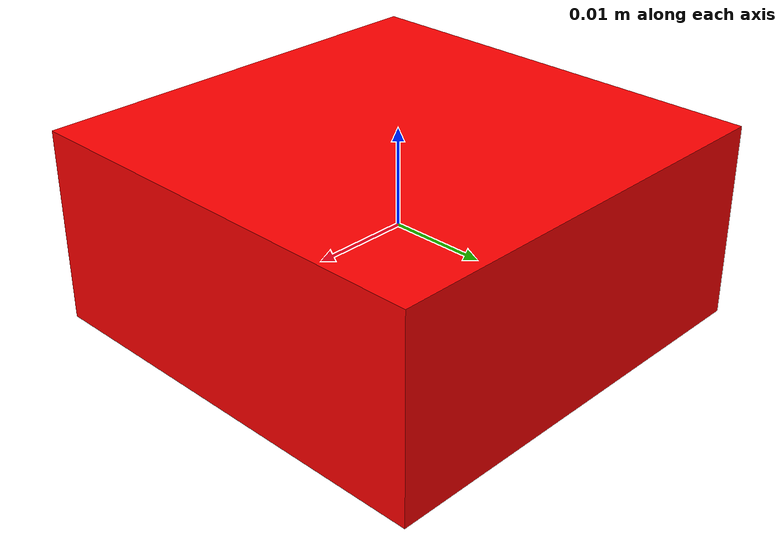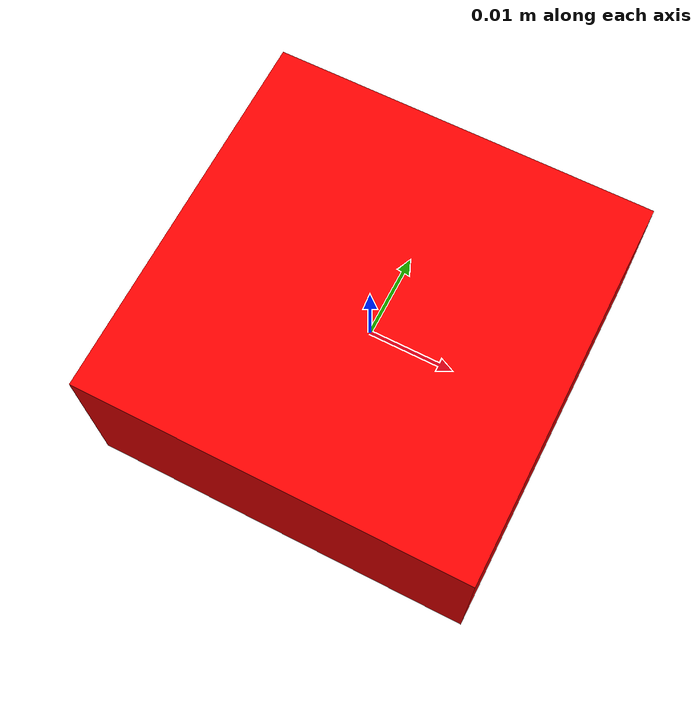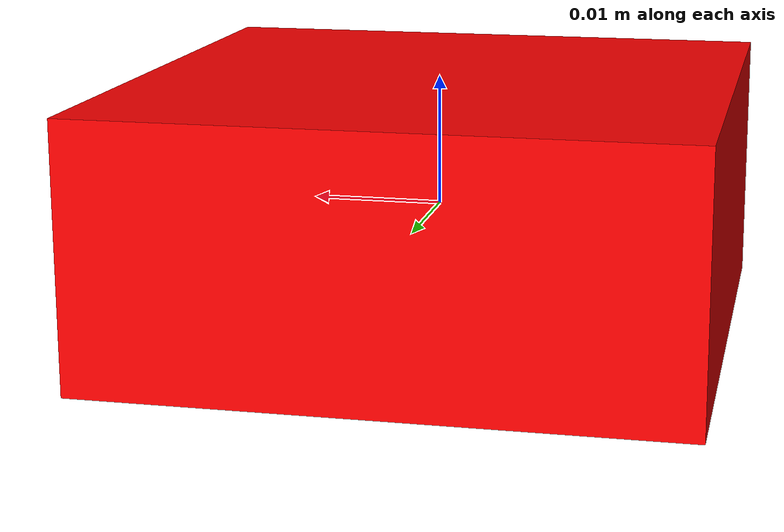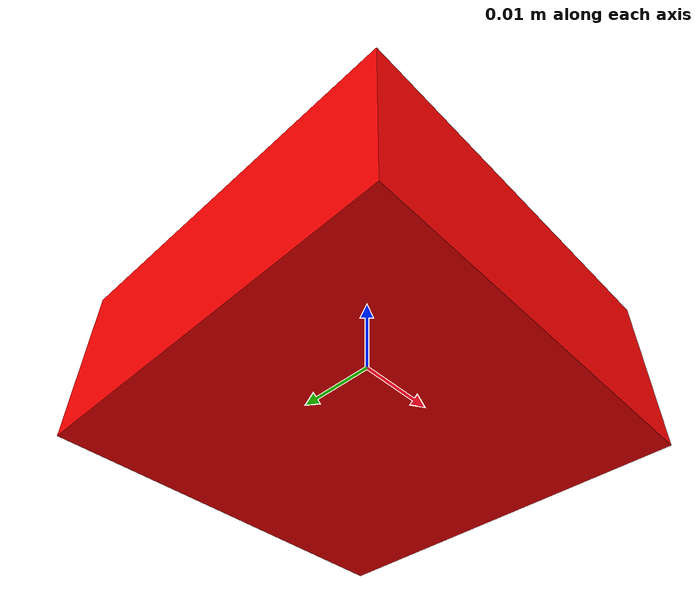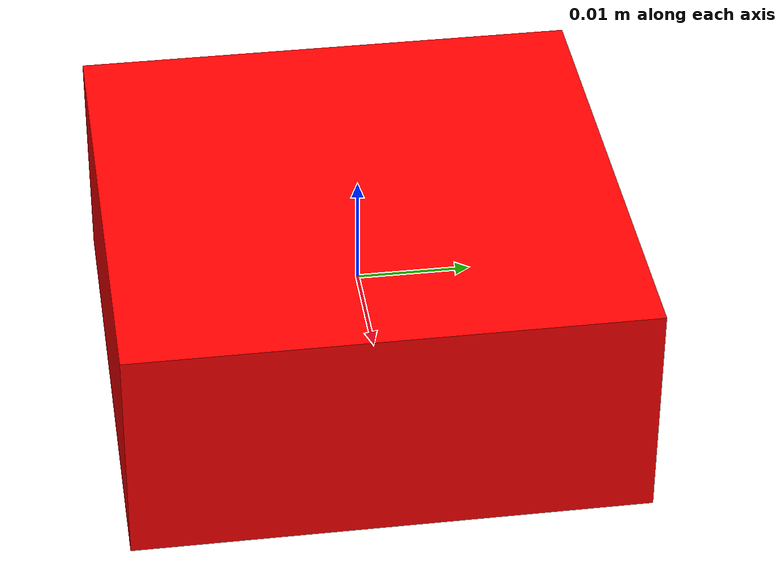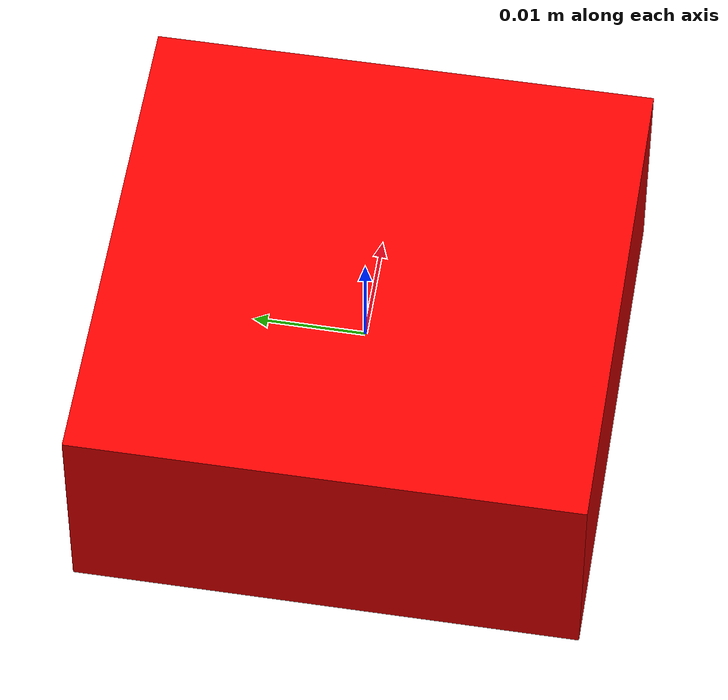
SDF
<?xml version="1.0" ?>
<sdf version="1.6">
  <model name="red_cube">
    <static>false</static>
    <link name="link">
      <inertial>
        <mass>0.05</mass>
        <inertia>
          <ixx>1.0104e-05</ixx>
          <ixy>0</ixy>
          <ixz>0</ixz>
          <iyy>1.0104e-05</iyy>
          <iyz>0</iyz>
          <izz>1.6875e-05</izz>
        </inertia>
      </inertial>
      <collision name="collision">
        <geometry>
          <box>
            <size>0.045 0.045 0.02</size>
          </box>
        </geometry>
        <surface>
          <friction>
            <ode>
              <mu>2.0</mu>
              <mu2>0.0</mu2>
              <fdir1>0 0 0</fdir1>
              <slip1>0.0</slip1>
              <slip2>0.0</slip2>
            </ode>
            <torsional>
              <coefficient>0.8</coefficient>
              <use_patch_radius>true</use_patch_radius>
              <patch_radius>2</patch_radius>
              <surface_radius>0.0</surface_radius>
              <ode>
                <slip>0.0</slip>
              </ode>
            </torsional>
          </friction>
          <contact>
            <collide_without_contact>false</collide_without_contact>
            <collide_without_contact_bitmask>1</collide_without_contact_bitmask>
            <collide_bitmask>1</collide_bitmask>
            <ode>
              <soft_cfm>0.00005</soft_cfm>
              <soft_erp>0.4</soft_erp>
              <kp>1000000000</kp>
              <kd>100000</kd>
              <max_vel>0.01</max_vel>
              <min_depth>0.0001</min_depth>
            </ode>
          </contact>
          <bounce>
            <restitution_coefficient>0.0</restitution_coefficient>
            <threshold>1e+06</threshold>
          </bounce>
        </surface>
      </collision>
      <visual name="visual">
        <geometry>
          <box>
            <size>0.045 0.045 0.02</size>
          </box>
        </geometry>
        <material>
          <ambient>1 0 0 1</ambient>
          <diffuse>1 0 0 1</diffuse>
          <specular>0.1 0.1 0.1 1</specular>
          <emissive>0 0 0 0</emissive>
        </material>
      </visual>
    </link>
  </model>
</sdf>
